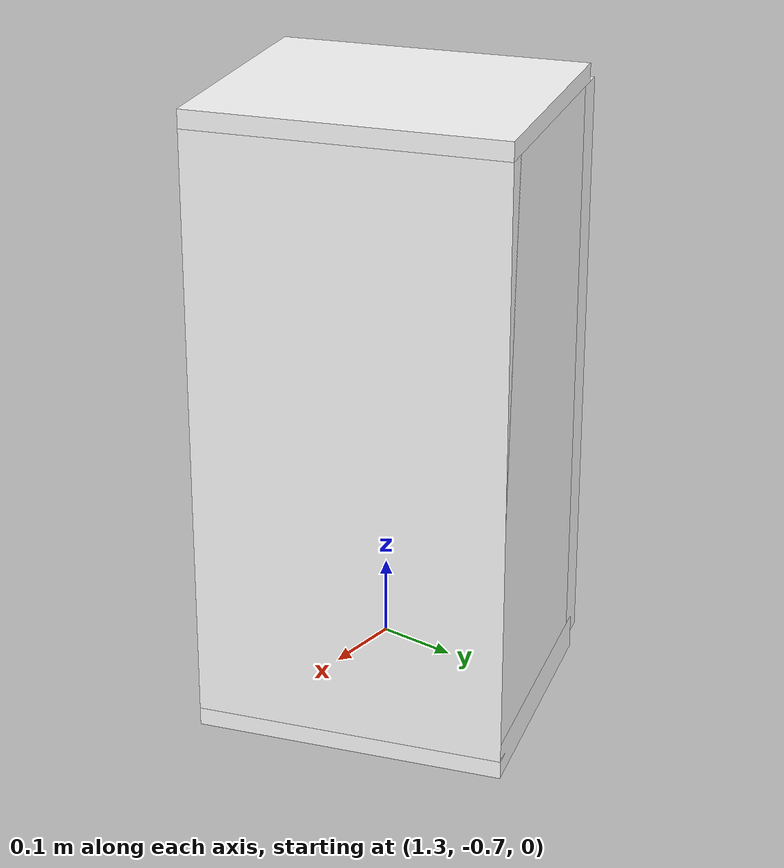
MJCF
<mujoco model="cabinet">
    <compiler angle="radian" eulerseq='zxy' />
    <option gravity = "0 0 0" />
    <option>
        <flag contact = "disable"/>
    </option>
    <statistic	extent="1.0" center="0.0 0.0 0.0"/>
    <visual>
        <map fogstart="3" fogend="5" force="0.1" znear=" 0.100000 " zfar=" 12.000000 "/>
    </visual>
    <size njmax="500" nconmax="100" />
    <actuator>
        <velocity joint="bottom_left_hinge" name="viva_revolution" kv='10'></velocity>
    </actuator>
    <asset>
        <texture builtin="flat" name="tabletex" height="32" width="32" rgb1="1 1 1" type="cube"></texture>
        <texture builtin="flat" name="objtex" height="32" width="32" rgb1="1 1 1" type="cube"></texture>
        <texture builtin="flat" name="handletex" height="32" width="32" rgb1="1 1 1" type="cube"></texture>
        <texture builtin="flat" name="wallpaper" height="32" width="32" rgb1="1 1 1" type="cube"></texture>
        <material name="geomTable" shininess="0.03" specular="0.75" texture="tabletex"></material>
        <material name="geomObj" shininess="0.03" specular="0.75" texture="objtex"></material>
        <material name="geomHandle" shininess="0.03" specular="0.75" texture="handletex"></material>
        <material name="bg" shininess="0.03" specular="0.75" texture="wallpaper"></material>
    </asset>
    <worldbody>
            <body name="cabinet_bottom" pos= " 1.552472 -0.497664 0.132276 "  quat= " -0.166658 0.000000 0.000000 0.986015" >
                <inertial pos="0 0 0" mass="1" diaginertia="1 1 1" />
                <geom size= " 0.149395 0.173394 0.020489 "  type="box" material="geomObj" name="b"/>
                <body name="cabinet_left" pos= " 0.000000 -0.152905 0.333616 " >
                    <inertial pos="0 0 0" mass="1" diaginertia="1 1 1" />
                    <geom size= " 0.149395 0.020489 0.333616 "  type="box" material="geomObj" name="c" />
                </body>
                <body name="cabinet_right" pos= " 0.000000 0.152905 0.333616 " >
                    <inertial pos="0 0 0" mass="1" diaginertia="1 1 1" />
                    <geom size= " 0.149395 0.020489 0.333616 "  type="box" material="geomObj" name="d" />
                </body>
                <body name="cabinet_top" pos= " 0.000000 0.000000 0.667233 " >
                    <inertial pos="0 0 0" mass="1" diaginertia="1 1 1" />
                    <geom size= " 0.149395 0.173394 0.020489 "  type="box" material="geomObj" name="e"/>
                </body>
                <body name="cabinet_back" pos= " -0.128907 0.000000 0.333616 "  >
                    <inertial pos="0 0 0" mass="1" diaginertia="1 1 1" />
                    <geom size= " 0.020489 0.173394 0.333616 "  type="box" material="geomObj" name="f" />
                </body>
                <body name="cabinet_left_hinge" pos= " 0.149395 -0.173394 0.333616 " >
                    <inertial pos= " 0.000000 0.173394 0.000000 "  mass="1" diaginertia="1 1 1" />
                    <joint name="bottom_left_hinge" type="hinge" pos="0 0 0" axis="0 0 1" limited="true" range= "-2.3 0"  />
                    <geom size= " 0.020489 0.173394 0.333616 "  pos= " 0.000000 0.173394 0.000000 "  type="box" material="geomObj" name="g"/>
                    <body name="handle_link" pos= " 0.037349 0.303283 -0.169686 " >
                        <inertial pos="0 0 0" mass="1" diaginertia="1 1 1" />
                        <geom size= " 0.020781 0.021773 0.120160 "  type="box" material="geomHandle" name="h"/>
                    </body>
                </body>
            </body>
        <body name="external_camera_body_0" pos="0.0 0 0.00">
            <camera euler="-1.57 1.57 0.0" fovy=" 54.280851 " name="external_camera_0" pos="0.0 0 0"></camera>
            <inertial pos= " 0.00 0.0 0.000000 " mass="1" diaginertia="1 1 1" />
            <joint name="cam_j" pos="0.0 0 0" axis = "1 0 0" type="free" />
        </body>
    </worldbody>
</mujoco>
